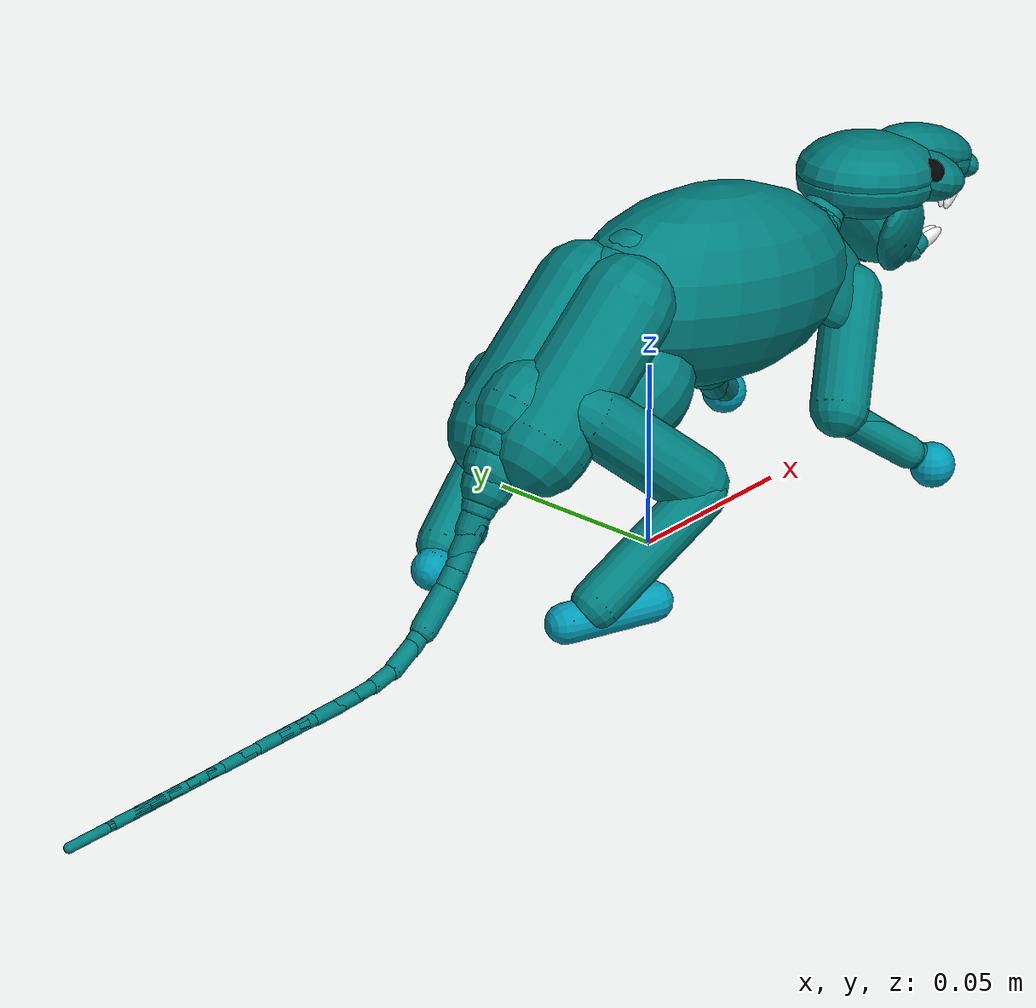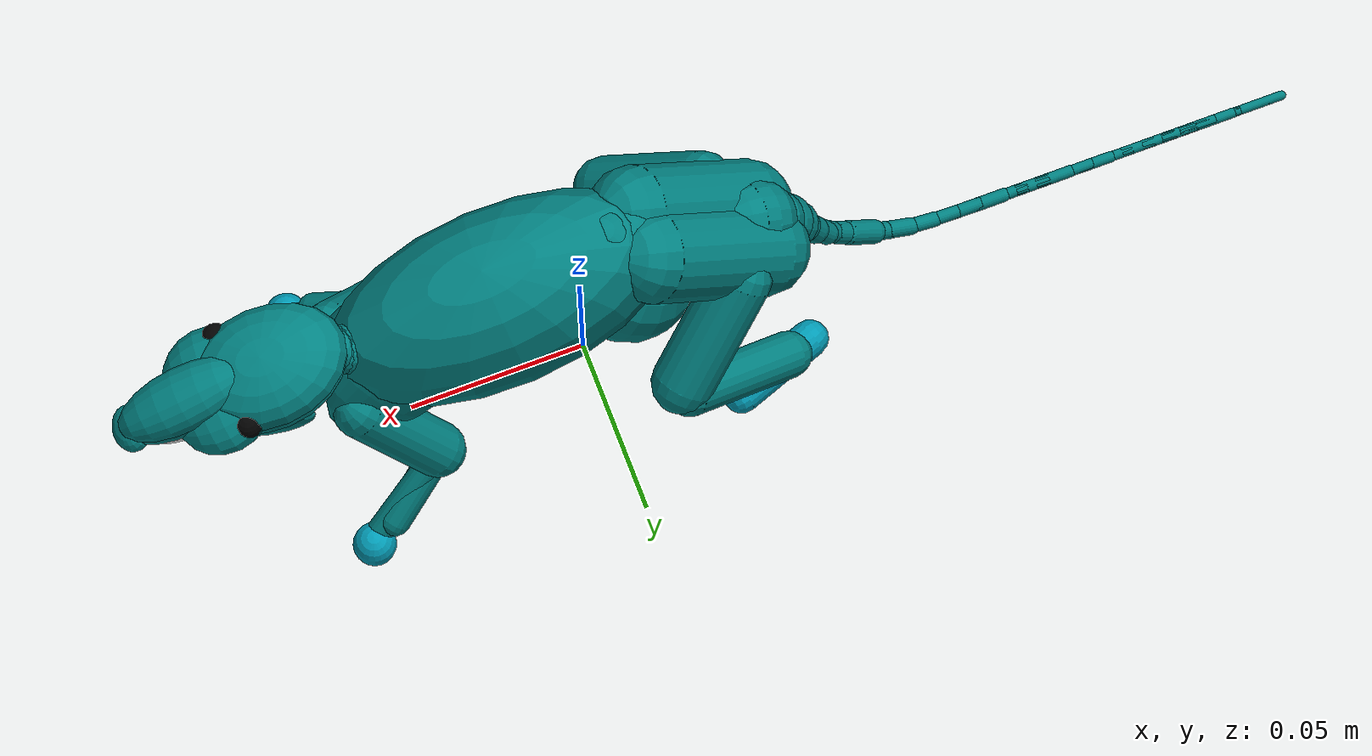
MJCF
<mujoco model="rat">
  <compiler angle="radian"/>

  <size njmax="8000" nconmax="4000"/>

  <visual>
    <quality shadowsize="2048"/>
    <global offheight="2200" offwidth="3208"/>
  </visual>

  <default>
    <joint limited="true" solreflimit="0.01 1" solimplimit="0.99 0.9999 0" armature="6e-07" damping="0.001"/>
    <geom friction="0.7 0.005 0.0001" solref="0.005 1"/>
    <site group="3" rgba="0 0 1 1"/>
    <tendon limited="false"/>
    <general ctrllimited="true" forcelimited="false" dyntype="filter" biastype="affine" dynprm="0.04"/>
    <default class="bone">
      <geom contype="0" conaffinity="0" group="0" rgba="0.5 0.5 0.5 1" density="1100"/>
    </default>
    <default class="collision">
      <geom contype="1" conaffinity="1" condim="1" group="2"/>
      <default class="collision_primitive">
        <geom type="capsule" group="2" rgba="0 0.5 0.5 1" density="500"/>
        <default class="collision_primitive_paw">
          <geom condim="3" priority="1" rgba="0 0.6 0.7 1" friction="1.5 0.005 0.0001"/>
        </default>
        <default class="nonself_collision_primitive">
          <geom conaffinity="0"/>
        </default>
      </default>
    </default>
    <default class="lumbar">
      <joint group="3" pos="0.003 0 -0.003" armature="1e-05" damping="0.03"/>
      <general forcerange="-20 20" gainprm="20" biasprm="0 -20"/>
      <default class="lumbar_extend">
        <joint stiffness="0.02" range="-0.5236 0.7854"/>
        <tendon range="-1 1"/>
        <general ctrlrange="-0.5236 0.7854"/>
      </default>
      <default class="lumbar_bend">
        <joint stiffness="0.03" range="-0.5236 0.5236"/>
        <tendon range="-1 1"/>
        <general ctrlrange="-0.5236 0.5236"/>
      </default>
      <default class="lumbar_twist">
        <joint stiffness="0.03" range="-0.5236 0.5236"/>
        <tendon range="-1 1"/>
        <general ctrlrange="-0.5236 0.5236"/>
      </default>
    </default>
    <default class="cervical">
      <joint group="3" pos="-0.02 0 -0.05" stiffness="1" armature="0.001" damping="1"/>
      <general forcerange="-20 20" gainprm="20" biasprm="0 -20"/>
      <default class="cervical_extend">
        <joint range="-0.40724 0.61087"/>
        <tendon range="-1 1"/>
        <general ctrlrange="-0.40724 0.61087"/>
      </default>
      <default class="cervical_bend">
        <joint range="-0.61087 0.61087"/>
        <tendon range="-1 1"/>
        <general ctrlrange="-0.61087 0.61087"/>
      </default>
      <default class="cervical_twist">
        <joint range="-0.61087 0.61087"/>
        <tendon range="-1 1"/>
        <general ctrlrange="-0.61087 0.61087"/>
      </default>
    </default>
    <default class="atlas">
      <joint axis="0 -1 0" stiffness="0.002" range="-0.087266 0.7854" damping="0.002"/>
      <general ctrlrange="-0.087266 0.7854" forcerange="-0.025 0.025" gainprm="0.05" biasprm="0 -0.05"/>
    </default>
    <default class="mandible">
      <joint stiffness="0.002" range="-0.29671 0.2618" springref="-0.31416" damping="0.002"/>
      <general ctrlrange="-0.29671 0.2618" forcerange="-0.025 0.025" gainprm="0.05" biasprm="0 -0.05"/>
    </default>
    <default class="caudal">
      <joint group="3" stiffness="1e-05" damping="0.002"/>
      <general forcerange="-0.1 0.1" gainprm="0.1" biasprm="0 -0.1"/>
      <default class="caudal_extend">
        <joint range="-0.087266 0.087266"/>
        <tendon range="-0.05 0.05"/>
        <general ctrlrange="-0.2618 0.2618"/>
      </default>
      <default class="caudal_bend">
        <joint range="-0.087266 0.087266"/>
        <tendon range="-0.2 0.2"/>
        <general ctrlrange="-0.2618 0.2618"/>
      </default>
    </default>
    <default class="hip">
      <joint armature="1e-05" damping="0.02"/>
      <general gainprm="0.2"/>
      <default class="hip_supinate">
        <joint range="-0.69813 0.5236"/>
        <general ctrlrange="-0.69813 0.5236" forcerange="-0.2 0.2" gainprm="0.4" biasprm="0 -0.4"/>
      </default>
      <default class="hip_abduct">
        <joint range="-0.5236 1.0472"/>
        <general ctrlrange="-0.5236 1.0472" forcerange="-0.2 0.2" gainprm="0.4" biasprm="0 -0.4"/>
      </default>
      <default class="hip_extend">
        <joint range="-1.5708 1.0472"/>
        <general ctrlrange="-1.5708 1.0472" forcerange="-0.3 0.3" gainprm="0.6" biasprm="0 -0.6"/>
      </default>
    </default>
    <default class="knee">
      <joint range="-1.2217 1.5359" damping="0.005"/>
      <general ctrlrange="-1.2217 1.5359" forcerange="-0.2 0.2" gainprm="0.4" biasprm="0 -0.4"/>
    </default>
    <default class="ankle">
      <joint range="-0.13963 1.3963" damping="0.003"/>
      <general ctrlrange="-0.13963 1.3963" forcerange="-0.2 0.2" gainprm="0.4" biasprm="0 -0.4"/>
    </default>
    <default class="toe">
      <joint range="-0.7854 1.5708" damping="0.001"/>
      <general ctrlrange="-0.7854 1.5708" forcerange="-0.025 0.025" gainprm="0.05" biasprm="0 -0.05"/>
    </default>
    <default class="scapula">
      <joint damping="0.005"/>
      <general forcerange="-0.25 0.25" gainprm="0.5" biasprm="0 -0.5"/>
      <default class="scapula_supinate">
        <joint pos="0 0.005 0" range="-0.017453 0.17453"/>
        <general ctrlrange="-0.017453 0.17453"/>
      </default>
      <default class="scapula_abduct">
        <joint pos="0 0.005 -0.01" range="-0.2618 0.2618"/>
        <general ctrlrange="-0.2618 0.2618"/>
      </default>
      <default class="scapula_extend">
        <joint pos="0 0 0" range="-0.034907 0.034907"/>
        <general ctrlrange="-0.034907 0.034907"/>
      </default>
    </default>
    <default class="shoulder">
      <joint range="-1.309 0.87266" damping="0.005"/>
      <general ctrlrange="-1.309 0.87266" forcerange="-0.15 0.15" gainprm="0.3" biasprm="0 -0.3"/>
    </default>
    <default class="shoulder_sup">
      <joint range="-0.05236 1.1345" damping="0.005"/>
      <general ctrlrange="-0.05236 1.1345" forcerange="-0.15 0.15" gainprm="0.3" biasprm="0 -0.3"/>
    </default>
    <default class="elbow">
      <joint range="-1.309 0.69813" damping="0.003"/>
      <general ctrlrange="-1.309 0.69813" forcerange="-0.15 0.15" gainprm="0.3" biasprm="0 -0.3"/>
    </default>
    <default class="wrist">
      <joint range="-0.34907 2.0944" damping="0.002"/>
      <general ctrlrange="-0.34907 2.0944" forcerange="-0.05 0.05" gainprm="0.1" biasprm="0 -0.1"/>
    </default>
    <default class="finger">
      <joint range="0 1.5708" damping="0.002"/>
      <general ctrlrange="0 1.5708" forcerange="-0.025 0.025" gainprm="0.05" biasprm="0 -0.05"/>
    </default>
    <default class="sensor">
      <site group="4"/>
    </default>
  </default>

  <statistic meansize="0.003"/>

  <worldbody>

    <camera name="Cam13" mode="fixed" focalpixel="2477.229548414393 2477.229548414393" resolution="3208 2200" sensorsize="0.014436 0.0099" pos="-0.7601674022374256 -1.437212204600267 0.8074461972683981" xyaxes="0.84311395 -0.53753789 0.01455625 0.20435236 0.34532512 0.91596434"/>

    <camera name="Cam14"  mode="fixed" pos="0 -2 0.412"  xyaxes="1 0 0.000 0 0.256 1"/>

    <body name="torso" pos="0.030995 2.0585e-07 0.06509">
      <site name="neck_3_kpsite" type="sphere" size=".005 .005 .005" rgba=".9 .6 .7 1" pos="0.025 0 0.02"/>

      <light name="tracking_light" mode="trackcom" pos="0 0 3"/>
      <camera name="back" mode="trackcom" pos="-1 0 0.5" xyaxes="0 -1 0 1 0 2"/>
      <camera name="side" mode="trackcom" pos="0 -1 0.5" xyaxes="1 0 0 0 1 2"/>
      <camera name="side_alt" mode="trackcom" pos="0.5 -0.561 0.199" xyaxes="0.766 0.643 0 -0.162 0.192 0.968"/>
      <camera name="side_alt2" mode="trackcom" pos="-0.386 -2.103 1.099" xyaxes="0.986 -0.164 -0.000 0.072 0.435 0.898"/>

       <camera name="faroff" mode="trackcom"  pos="-0.129 -4.905 1.394" xyaxes="1.000 -0.019 0.000 0.005 0.264 0.965"/>
       <camera/>

      <geom name="collision_torso" class="nonself_collision_primitive" type="ellipsoid" size="0.05 0.024 0.026" density="468.25" pos="-0.0082 0 0" euler="0 0.17453 0"/>
      <body name="vertebra_1" pos="-0.019179 -1.8803e-07 0.016846">
        <geom name="vertebra_1_collision" class="nonself_collision_primitive" type="sphere" size="0.01" pos="0 0 -0.00164"/>
        <body name="vertebra_2" pos="-0.0056297 2.5948e-06 0.00053209">
          <geom name="vertebra_2_collision" class="nonself_collision_primitive" type="sphere" size="0.01" pos="0 0 -0.00164"/>
          <body name="vertebra_3" pos="-0.0065172 -1.0411e-05 -9.4672e-05">
            <geom name="vertebra_3_collision" class="nonself_collision_primitive" type="sphere" size="0.01" pos="0 0 -0.00164"/>
            <body name="vertebra_4" pos="-0.0067777 8.7461e-06 -0.0012993">
              <geom name="vertebra_4_collision" class="nonself_collision_primitive" type="sphere" size="0.01" pos="0 0 -0.00164"/>
              <body name="vertebra_5" pos="-0.0068901 -6.2043e-06 -0.0024981">

                <site name="spineL_4_kpsite" type="sphere" size=".005 .005 .005" rgba=".9 .6 .7 1" pos="0 0 0.007"/>

                <geom name="vertebra_5_collision" class="nonself_collision_primitive" type="sphere" size="0.01" pos="0 0 -0.00164"/>
                <body name="vertebra_6" pos="-0.0061853 5.2544e-06 -0.0036411">
                  <geom name="vertebra_6_collision" class="nonself_collision_primitive" type="sphere" size="0.01" pos="0 0 -0.00164"/>
                  <joint name="vertebra_6_twist" class="lumbar_twist" axis="1 0 0"/>
                  <body name="pelvis" pos="-0.013071 3.5132e-06 -0.008121">
                    <geom name="collision_pelvis_L" class="nonself_collision_primitive" size="0.013 0.021 0" density="1548.6" pos="-0.00082 0.00656 -0.00574" euler="0 0.87266 0"/>
                    <geom name="collision_pelvis_R" class="nonself_collision_primitive" size="0.013 0.021 0" density="1548.6" pos="-0.00082 -0.00656 -0.00574" euler="0 0.87266 0"/>
                    <geom name="collision_pelvis_gut" class="nonself_collision_primitive" type="ellipsoid" size="0.02 0.02 0.018" density="1548.6" pos="0.0205 0 -0.0164" euler="0 -0.5236 0"/>
                    <site name="hip_L" size="0.0022" pos="-0.0048103 0.011491 -0.0098878"/>
                    <site name="hip_R" size="0.0022" pos="-0.0048103 -0.011491 -0.0098878"/>

                    <body name="upper_leg_L" pos="-0.0048103 0.011491 -0.0098878">
                      <joint name="hip_L_supinate" class="hip_supinate" axis="0 0 1"/>
                      <joint name="hip_L_abduct" class="hip_abduct" axis="1 0 0"/>
                      <joint name="hip_L_extend" class="hip_extend" axis="0 1 0"/>
                      <site name="knee_L" type="cylinder" size="0.0006 0.004" pos="0.015423 0.017479 -0.025704" zaxis="0 1 0"/>
                      <geom name="upper_leg_L0_collision" class="collision_primitive" size="0.0087424 0.017485" density="1561.8" pos="0.0086025 0.010753 -0.012904" euler="0.61087 -0.69813 0"/>

                    <body name="lower_leg_L" pos="0.01542264534586861 0.01747899805865108 -0.02570440890978101">

                        <site name="knee_L_14_kpsite" type="sphere" size=".01 .01 .01" rgba=".9 .6 .7 1" pos="0 0 0"/>

                        <joint name="knee_L" class="knee" axis="0.5 -1 0"/>
                        <site name="ankle_L" type="cylinder" size="0.0006000000000000001 0.0026" pos="-0.03230154033783406 -0.004727054683585472 -0.02205958852339887" zaxis="0 1 0"/>
                        <body name="foot_L" pos="-0.03230154033783406 -0.004727054683585472 -0.02205958852339887">

                          <site name="ankle_L_15_kpsite" type="sphere" size=".008 .008 .008" rgba=".9 .6 .7 1" pos="0 0 0"/>

                          <joint name="ankle_L" class="ankle" axis="-0.3 1 0"/>
                          <geom name="foot_L_collision" class="collision_primitive_paw" size="0.005210712207833968 0.01238417565878816" density="2041.15978228" pos="0.008274464032760684 0.002256672008934731 -0.002256672008934731" euler="1.570796326794897 -1.221730476396031 0"/>
                          <site name="toe_L" type="cylinder" size="0.0006000000000000001 0.005000000000000001" pos="0.02109994311367263 0.007614327297542731 -0.002752166493087734" zaxis="0 1 0"/>
                          <body name="toe_L" pos="0.02109994311367263 0.007614327297542731 -0.002752166493087734">

                            <site name="foot_L_16_kpsite" type="sphere" size=".005 .005 .005" rgba=".9 .6 .7 1" pos="0 0 0"/>

                            <site name="sole_L" class="sensor" type="box" size="0.006 0.004 0.002" pos="0.008200000000000001 0.00246 -0.00164" euler="0 0 0.3490658503988659"/>
                          </body>
                        </body>
                        <geom name="lower_leg_L_collision" class="collision_primitive" size="0.006556802251673236 0.01923328660490816" density="1302.86687267" pos="-0.01226339046929431 0.0001224792426221771 -0.01071813365303941" quat="0.5843939876140521 0.278581552273902 0.3900453953818352 0.6547828460754284"/>
                      </body>
                    </body>

                    <body name="upper_leg_R" pos="-0.0048103 -0.011491 -0.0098878">
                      <joint name="hip_R_supinate" class="hip_supinate" axis="0 0 -1"/>
                      <joint name="hip_R_abduct" class="hip_abduct" axis="-1 0 0"/>
                      <joint name="hip_R_extend" class="hip_extend" axis="0 1 0"/>
                      <site name="knee_R" type="cylinder" size="0.0006 0.004" pos="0.015423 -0.017479 -0.025704" zaxis="0 1 0"/>
                      <geom name="upper_leg_R0_collision" class="collision_primitive" size="0.0087424 0.017485" density="1561.8" pos="0.0086025 -0.010753 -0.012904" euler="-0.61087 -0.69813 0"/>

                      <body name="lower_leg_R" pos="0.01542264534586861 -0.01747899805865108 -0.02570440890978101">

                        <site name="knee_R_17_kpsite" type="sphere" size=".01 .01 .01" rgba=".9 .6 .7 1" pos="0 0 0"/>

                        <joint name="knee_R" class="knee" axis="-0.5 -1 0"/>
                        <site name="ankle_R" type="cylinder" size="0.0006000000000000001 0.0026" pos="-0.03230154033783406 0.004727054683585472 -0.02205958852339887" zaxis="0 1 0"/>
                        <body name="foot_R" pos="-0.03230154033783406 0.004727054683585472 -0.02205958852339887">

                          <site name="ankle_R_18_kpsite" type="sphere" size=".008 .008 .008" rgba=".9 .6 .7 1" pos="0 0 0"/>

                          <joint name="ankle_R" class="ankle" axis="0.3 1 0"/>
                          <geom name="foot_R_collision" class="collision_primitive_paw" size="0.005210712207833968 0.01238417565878816" density="2041.15978228" pos="0.008274464032760684 -0.002256672008934731 -0.002256672008934731" euler="1.570796326794897 1.221730476396031 0"/>
                          <site name="toe_R" type="cylinder" size="0.0006000000000000001 0.005000000000000001" pos="0.02109994311367263 -0.007614327297542731 -0.002752166493087734" zaxis="0 1 0"/>
                          <body name="toe_R" pos="0.02109994311367263 -0.007614327297542731 -0.002752166493087734">

                            <site name="foot_R_19_kpsite" type="sphere" size=".005 .005 .005" rgba=".9 .6 .7 1" pos="0 0 0"/>

                            <site name="sole_R" class="sensor" type="box" size="0.006 0.004 0.002" pos="0.008200000000000001 -0.00246 -0.00164" euler="0 0 -0.3490658503988659"/>
                          </body>
                        </body>
                        <geom name="lower_leg_R_collision" class="collision_primitive" size="0.006556802251673236 0.01923328660490816" density="1302.86687267" pos="-0.01202896613332032 -0.0001615786954038913 -0.0105741369075766" quat="0.6564315036111004 0.3901417719765998 0.2779576926818845 0.5827749135856758"/>
                      </body>
                    </body>

                    <body name="vertebra_C1" pos="-0.01579 0 -0.011882">
                      <body name="vertebra_C2" pos="-0.0038771 0 -0.0042264">
                        <body name="vertebra_C3" pos="-0.003424 0 -0.0042631">
                          <body name="vertebra_C4" pos="-0.0032719 0 -0.0044168">

                          <site name="tailbase_5_kpsite" type="sphere" size=".005 .005 .005" rgba=".9 .6 .7 1" pos="0 0 0.011"/>

                            <body name="vertebra_C5" pos="-0.003176 0 -0.0045693">
                              <body name="vertebra_C6" pos="-0.0031192 0 -0.0049014">
                                <body name="vertebra_C7" pos="-0.0032158 0 -0.0056444">
                                  <body name="vertebra_C8" pos="-0.0034459 0 -0.0055182">
                                    <body name="vertebra_C9" pos="-0.0042852 0 -0.005115">
                                      <body name="vertebra_C10" pos="-0.0048615 0 -0.0045622">
                                        <body name="vertebra_C11" pos="-0.0053748 0 -0.0043642">
                                          <body name="vertebra_C12" pos="-0.0061345 0 -0.0038415">
                                            <body name="vertebra_C13" pos="-0.0068974 0 -0.0025924">
                                              <body name="vertebra_C14" pos="-0.006825 0 -0.0009089">
                                                <body name="vertebra_C15" pos="-0.0065262 0 -0.00031533">
                                                  <body name="vertebra_C16" pos="-0.0066939 0 -0.00013849">
                                                    <body name="vertebra_C17" pos="-0.0064854 0 -1.6705e-05">
                                                      <body name="vertebra_C18" pos="-0.0062074 0 0">
                                                        <body name="vertebra_C19" pos="-0.0062043 0 0">
                                                          <body name="vertebra_C20" pos="-0.0062284 0 2.5165e-06">
                                                            <body name="vertebra_C21" pos="-0.0061177 0 -0.00010966">
                                                            <body name="vertebra_C22" pos="-0.0065081 0 -1.312e-05">
                                                            <body name="vertebra_C23" pos="-0.0063908 0 0">
                                                            <body name="vertebra_C24" pos="-0.0061807 0 0">
                                                            <body name="vertebra_C25" pos="-0.0059682 0 0">
                                                            <body name="vertebra_C26" pos="-0.0056287 0 0">
                                                            <body name="vertebra_C27" pos="-0.0051931 0 0">
                                                            <body name="vertebra_C28" pos="-0.0050362 0 5.074e-07">
                                                            <body name="vertebra_C29" pos="-0.0047739 0 0">
                                                            <body name="vertebra_C30" pos="-0.0040054 0 -4.1972e-07">
                                                            <geom name="vertebra_C30_collision" class="collision_primitive" size="0.0012979 0.0061625 0.0034565" density="507.16" pos="0 0 0" quat="0 0.70711 0 0.70711"/>
                                                            </body>
                                                            <joint name="vertebra_C29_bend" class="caudal_bend" pos="0.0037408 0 0" axis="0 0 -1" range="-0.2618 0.2618"/>
                                                            <geom name="vertebra_C29_collision" class="collision_primitive" size="0.0012968 0.0059638 0.0026188" density="507.16" pos="0 0 0" quat="0 0.70711 0 0.70711"/>
                                                            </body>
                                                            <geom name="vertebra_C28_collision" class="collision_primitive" size="0.0012968 0.0057649 0.0028778" density="507.16" pos="0 0 0" quat="0 0.70711 0 0.70711"/>
                                                            </body>
                                                            <joint name="vertebra_C27_extend" class="caudal_extend" pos="0.0038538 0 0" axis="0 1 0" range="-0.2618 0.2618"/>
                                                            <geom name="vertebra_C27_collision" class="collision_primitive" size="0.0013796 0.0055662 0.0030614" density="507.16" pos="0 0 0" quat="0 0.70711 0 0.70711"/>
                                                            </body>
                                                            <geom name="vertebra_C26_collision" class="collision_primitive" size="0.0013796 0.0053673 0.0030614" density="507.16" pos="0 0 0" quat="0 0.70711 0 0.70711"/>
                                                            </body>
                                                            <joint name="vertebra_C25_bend" class="caudal_bend" pos="0.0035962 0 0" axis="0 0 -1" range="-0.2618 0.2618"/>
                                                            <geom name="vertebra_C25_collision" class="collision_primitive" size="0.0013796 0.0051686 0.0034789" density="507.16" pos="0 0 0" quat="0 0.70711 0 0.70711"/>
                                                            </body>
                                                            <geom name="vertebra_C24_collision" class="collision_primitive" size="0.0013796 0.0049698 0.0034789" density="507.16" pos="0 0 0" quat="0 0.70711 0 0.70711"/>
                                                            </body>
                                                            <joint name="vertebra_C23_extend" class="caudal_extend" pos="0.0035962 0 0" axis="0 1 0" range="-0.2618 0.2618"/>
                                                            <geom name="vertebra_C23_collision" class="collision_primitive" size="0.0013796 0.004771 0.0037408" density="507.16" pos="0 0 0" quat="0 0.70711 0 0.70711"/>
                                                            </body>
                                                            <geom name="vertebra_C22_collision" class="collision_primitive" size="0.0013796 0.0045722 0.0037408" density="507.16" pos="0 0 0" quat="0 0.70711 0 0.70711"/>
                                                            </body>
                                                            <joint name="vertebra_C21_bend" class="caudal_bend" pos="0.0038632 0 6.925e-05" axis="0.017923 0 -0.99984" range="-0.2618 0.2618"/>
                                                            <geom name="vertebra_C21_collision" class="collision_primitive" size="0.0015305 0.0049721 0.0038538" density="507.16" pos="0 0 0" quat="0 0.70711 0 0.70711"/>
                                                            </body>
                                                            <geom name="vertebra_C20_collision" class="collision_primitive" size="0.0014983 0.0051765 0.0035962" density="507.16" pos="0 0 0" quat="0 0.70711 0 0.70711"/>
                                                          </body>
                                                          <joint name="vertebra_C19_extend" class="caudal_extend" pos="0.0042786 0 0" axis="0 1 0" range="-0.2618 0.2618"/>
                                                          <geom name="vertebra_C19_collision" class="collision_primitive" size="0.001634 0.0051714 0.0035962" density="507.16" pos="0 0 0" quat="0 0.70711 0 0.70711"/>
                                                        </body>
                                                        <geom name="vertebra_C18_collision" class="collision_primitive" size="0.001634 0.0049128 0.0035962" density="507.16" pos="0 0 0" quat="0 0.70711 0 0.70711"/>
                                                      </body>
                                                      <joint name="vertebra_C17_bend" class="caudal_bend" pos="0.0042794 0 1.1023e-05" axis="0.0025757 0 -1" range="-0.2618 0.2618"/>
                                                      <geom name="vertebra_C17_collision" class="collision_primitive" size="0.001634 0.0046542 0.0035962" density="507.16" pos="0 0 0" quat="0 0.70711 0 0.70711"/>
                                                    </body>
                                                    <geom name="vertebra_C16_collision" class="collision_primitive" size="0.0018781 0.0043956 0.0038669" density="507.16" pos="0 0 0" quat="0 0.70711 0 0.70711"/>
                                                  </body>
                                                  <joint name="vertebra_C15_extend" class="caudal_extend" pos="0.0039328 0 0.00019003" axis="0 1 0" range="-0.2618 0.2618"/>
                                                  <geom name="vertebra_C15_collision" class="collision_primitive" size="0.0018453 0.0041371 0.0038638" density="507.16" pos="0 0 0" quat="0 0.69918 0 0.71494"/>
                                                </body>
                                                <geom name="vertebra_C14_collision" class="collision_primitive" size="0.0018451 0.0038785 0.0038637" density="507.16" pos="0 0 0" quat="0 0.68661 0 0.72702"/>
                                              </body>
                                              <joint name="vertebra_C13_bend" class="caudal_bend" pos="0.0035122 0 0.0013201" axis="0.35182 0 -0.93607" range="-0.2618 0.2618"/>
                                              <geom name="vertebra_C13_collision" class="collision_primitive" size="0.0020907 0.00396 0.0042786" density="507.16" pos="0 0 0" quat="0 0.62939 0 0.77709"/>
                                            </body>
                                            <geom name="vertebra_C12_collision" class="collision_primitive" size="0.0024335 0.0041462 0.0042791" density="507.16" pos="0 0 0" quat="0 0.50808 0 0.86131"/>
                                          </body>
                                          <joint name="vertebra_C11_extend" class="caudal_extend" pos="0.002737 0 0.0022224" axis="0 1 0" range="-0.2618 0.2618"/>
                                          <geom name="vertebra_C11_collision" class="collision_primitive" size="0.0024997 0.0038969 0.0042794" density="507.16" pos="0 0 0" quat="0 0.43494 0 0.90046"/>
                                        </body>
                                        <geom name="vertebra_C10_collision" class="collision_primitive" size="0.0034212 0.0051968 0.0039379" density="507.16" pos="0 0 0" quat="0 0.40482 0 0.9144"/>
                                      </body>
                                      <joint name="vertebra_C9_bend" class="caudal_bend" pos="0.0028865 0 0.0034454" axis="0.76655 0 -0.64219" range="-0.2618 0.2618"/>
                                      <geom name="vertebra_C9_collision" class="collision_primitive" size="0.0031306 0.0044949 0.0039374" density="507.16" pos="0 0 0" quat="0.93394 0 0.35744 0"/>
                                    </body>
                                    <geom name="vertebra_C8_collision" class="collision_primitive" size="0.0030158 0.003957 0.0039369" density="507.16" pos="0 0 0" quat="0.95576 0 0.29416 0"/>
                                  </body>
                                  <joint name="vertebra_C7_extend" class="caudal_extend" pos="0.0026902 0 0.0047218" axis="0 1 0" range="-0.2618 0.2618"/>
                                  <geom name="vertebra_C7_collision" class="collision_primitive" size="0.0032569 0.0046389 0.0037521" density="507.16" pos="0 0 0" quat="-0.95872 -0.028644 -0.26293 0.10445"/>
                                </body>
                                <joint name="vertebra_C6_extend" class="caudal_extend" pos="0.0021034 0 0.0033051" axis="0 1 0" range="-0.2618 0.2618"/>
                                <joint name="vertebra_C6_bend" class="caudal_bend" pos="0.0021034 0 0.0033051" axis="0.84365 0 -0.53689" range="-0.2618 0.2618"/>
                                <geom name="vertebra_C6_collision" class="collision_primitive" size="0.0038491 0.0044418 0.0039176" density="507.16" pos="0 0 0" quat="-0.96847 -0.020165 -0.23384 0.083519"/>
                              </body>
                              <joint name="vertebra_C5_extend" class="caudal_extend" pos="0.0020122 0 0.0028951" axis="0 1 0" range="-0.2618 0.2618"/>
                              <joint name="vertebra_C5_bend" class="caudal_bend" pos="0.0020122 0 0.0028951" axis="0.82113 0 -0.57074" range="-0.2618 0.2618"/>
                              <geom name="vertebra_C5_collision" class="collision_primitive" size="0.0045453 0.0037766 0.0035257" density="507.16" pos="0 0 0" quat="0.95956 0 0.28152 0"/>
                            </body>
                            <joint name="vertebra_C4_extend" class="caudal_extend" pos="0.0025361 0 0.0034235" axis="0 1 0" range="-0.2618 0.2618"/>
                            <joint name="vertebra_C4_bend" class="caudal_bend" pos="0.0025361 0 0.0034235" axis="0.80354 0 -0.59524" range="-0.2618 0.2618"/>
                            <geom name="vertebra_C4_collision" class="collision_primitive" size="0.0066528 0.0038517 0.0042605" density="507.16" pos="0 0 0" quat="0.6699 0.22636 0.22636 0.6699"/>
                          </body>
                          <joint name="vertebra_C3_extend" class="caudal_extend" pos="0.0028146 0 0.0035044" axis="0 1 0" range="-0.2618 0.2618"/>
                          <joint name="vertebra_C3_bend" class="caudal_bend" pos="0.0028146 0 0.0035044" axis="0.77966 0 -0.62621" range="-0.2618 0.2618"/>
                          <geom name="vertebra_C3_collision" class="collision_primitive" size="0.007896 0.0040974 0.0044947" density="507.16" pos="0 0 0" quat="0.65841 0.25786 0.25786 0.65841"/>
                        </body>
                        <joint name="vertebra_C2_extend" class="caudal_extend" pos="0.0035585 0 0.0038792" axis="0 1 0" range="-0.2618 0.2618"/>
                        <joint name="vertebra_C2_bend" class="caudal_bend" pos="0.0035585 0 0.0038792" axis="0.73691 0 -0.67599" range="-0.2618 0.2618"/>
                        <geom name="vertebra_C2_collision" class="collision_primitive" size="0.0083604 0.0035062 0.0052642" density="507.16" pos="0 0 0" quat="0.61659 0.34614 0.34614 0.61659"/>
                      </body>
                      <joint name="vertebra_C1_extend" class="caudal_extend" pos="0.0043423 0 0.0032675" axis="0 1 0" range="-0.2618 0.2618"/>
                      <joint name="vertebra_C1_bend" class="caudal_bend" pos="0.0043423 0 0.0032675" axis="0.60127 0 -0.79905" range="-0.2618 0.2618"/>
                      <geom name="vertebra_C1_collision" class="collision_primitive" size="0.010965 0.0023704 0.0054344" density="507.16" pos="0 0 0" quat="0.57724 0.35066 0.32403 0.66245"/>
                    </body>
                  </body>
                </body>
                <joint name="vertebra_5_bend" class="lumbar_bend" axis="0 0 1"/>
              </body>
              <joint name="vertebra_4_extend" class="lumbar_extend" axis="0 1 0"/>
            </body>
            <joint name="vertebra_3_twist" class="lumbar_twist" axis="1 0 0"/>
          </body>
          <joint name="vertebra_2_bend" class="lumbar_bend" axis="0 0 1"/>
        </body>
        <joint name="vertebra_1_extend" class="lumbar_extend" axis="0 1 0"/>
      </body>
      <body name="vertebra_cervical_5" pos="0.027709 1.1826e-05 -0.0010003">
        <geom name="vertebra_cervical_5_collision" class="nonself_collision_primitive" type="sphere" size="0.009" density="300"/>
        <body name="vertebra_cervical_4" pos="0.002409 -1.2015e-05 0.00080958">
          <geom name="vertebra_cervical_4_collision" class="nonself_collision_primitive" type="sphere" size="0.0084" density="300"/>
          <body name="vertebra_cervical_3" pos="0.0021503 0 0.00094153">
            <geom name="vertebra_cervical_3_collision" class="nonself_collision_primitive" type="sphere" size="0.0078" density="300"/>
            <body name="vertebra_cervical_2" pos="0.0019 0 0.00087476">
              <geom name="vertebra_cervical_2_collision" class="nonself_collision_primitive" type="sphere" size="0.0072" density="300"/>
              <body name="vertebra_cervical_1" pos="0.0017775 0 0.00093507">
                <geom name="vertebra_cervical_1_collision" class="nonself_collision_primitive" type="sphere" size="0.0066" density="300"/>
                <body name="vertebra_axis" pos="0.0018823 -1.7567e-06 0.0017059">
                  <geom name="vertebra_axis_collision" class="nonself_collision_primitive" type="sphere" size="0.006" density="300"/>
                  <body name="vertebra_atlant" pos="0.0024522 1.757e-06 0.0013696">
                    <geom name="vertebra_atlant_collision" class="nonself_collision_primitive" type="sphere" size="0.0054" density="300"/>
                    <joint name="vertebra_atlant_extend" class="cervical_extend" pos="2.7406e-05 0 -0.00021153" axis="0 1 0"/>
                    <body name="skull" pos="0.025955 0 0.0017705">
                      <geom name="skull_0_collision" class="collision_primitive" type="ellipsoid" size="0.022095 0.016696 0.01" density="703.11" pos="-0.009059 0 0.00082" euler="0 0.17453 0"/>
                      <geom name="skull_0b_collision" class="collision_primitive" type="ellipsoid" size="0.022095 0.016696 0.01" density="1.4062" pos="-0.009059 0 0.00328" euler="0 0.17453 0"/>
                      <geom name="skull_F_collision" class="collision_primitive" type="ellipsoid" size="0.0071809 0.0089043 0.02" density="703.11" pos="0.014494 0 -0.00082" euler="0 1.9199 0"/>
                      <geom name="skull_Fb_collision" class="collision_primitive" type="ellipsoid" size="0.0071809 0.0089043 0.02" density="1.4062" pos="0.014494 0 0.00164" euler="0 1.9199 0"/>
                      <geom name="skull_L_collision" class="collision_primitive" type="ellipsoid" size="0.0071809 0.013357 0.014" density="703.11" pos="0.0054354 0.0045635 -0.00082" euler="0 1.9199 0"/>
                      <geom name="eye_L_collision" class="collision_primitive" type="sphere" group="1" size="0.004 0.004 0.004" rgba="0 0 0 1" pos="0.0011048 0.0128 0.0025"/>

                      <site name="nose_0_kpsite" type="sphere" size=".005 .005 .005" rgba="1 0 0 1" pos=".038 0 -.004"/>
                      <site name="ear_L_1_kpsite" type="sphere" size=".005 .005 .005" rgba=".9 .6 .7 1" pos="-.011 0.0128 0.013"/>
                      <site name="ear_R_2_kpsite" type="sphere" size=".005 .005 .005" rgba=".9 .6 .7 1" pos="-.011 -0.0128 0.013"/>

                      <geom name="skull_R_collision" class="collision_primitive" type="ellipsoid" size="0.0071809 0.013357 0.014" density="703.11" pos="0.0054354 -0.0045635 -0.00082" euler="0 1.9199 0"/>
                      <geom name="eye_R_collision" class="collision_primitive" type="sphere" group="1" size="0.004 0.004 0.004" rgba="0 0 0 1" pos="0.0011048 -0.0128 0.0025"/>
                      <geom name="skull_P0_collision" class="collision_primitive" type="box" size="0.0066286 0.006233 0.0016" density="703.11" pos="0.0018118 0 -0.00574"/>
                      <geom name="skull_P1_collision" class="collision_primitive" type="box" size="0.004419 0.004007 0.0012" density="703.11" pos="0.0063413 0 -0.00574"/>
                      <geom name="skull_P2_collision" class="collision_primitive" type="box" size="0.0011048 0.0033391 0.0008" density="703.11" pos="0.0086061 0 -0.00574"/>
                      <geom name="skull_T0_collision" class="collision_primitive" type="ellipsoid" size="0.0055238 0.0066783 0.004" density="703.11" pos="0.029895 0 -0.00656" euler="0 0.5236 0"/>
                      <geom name="skull_T1_collision" class="collision_primitive" type="ellipsoid" group="1" size="0.0022095 0.0016696 0.007" rgba="1 1 1 1" density="703.11" pos="0.028083 0.0009127 -0.0123" euler="0 0.5236 0"/>
                      <geom name="skull_T2_collision" class="collision_primitive" type="ellipsoid" group="1" size="0.0022095 0.0016696 0.007" rgba="1 1 1 1" density="703.11" pos="0.028083 -0.0009127 -0.0123" euler="0 0.5236 0"/>
                      <joint name="atlas" class="atlas" pos="-0.028436 0 0"/>
                      <site name="head" class="sensor" type="box" size="0.002 0.002 0.002"/>
                      <camera name="egocentric" fovy="80" pos="0.01 0 0.005" euler="0 -1.5708 -1.5708"/>
                      <body name="jaw" pos="0.00045295 0 -0.0164" euler="0 0.2618 0">
                        <geom name="jaw_back_collision" class="collision_primitive" type="ellipsoid" size="0.012152 0.013357 0.007" density="314.06" pos="-0.010871 0 0.00205" euler="0 0.95993 0"/>
                        <geom name="jaw_F_collision" class="collision_primitive" type="ellipsoid" size="0.0033143 0.0066783 0.012" density="314.06" pos="0.0027177 0 -0.00492" euler="0 1.8326 0"/>
                        <geom name="jaw_L_collision" class="collision_primitive" type="ellipsoid" size="0.0099429 0.0038957 0.016" density="314.06" pos="-0.0054354 0.0082143 0.00082" euler="-0.69813 2.1817 0.5236"/>
                        <geom name="jaw_R_collision" class="collision_primitive" type="ellipsoid" size="0.0099429 0.0038957 0.016" density="314.06" pos="-0.0054354 -0.0082143 0.00082" euler="0.69813 2.1817 -0.5236"/>
                        <geom name="jaw_T0_collision" class="collision_primitive" type="ellipsoid" size="0.0033143 0.0033391 0.006" density="314.06" pos="0.012683 0 -0.00574" euler="0 1.2217 0"/>
                        <geom name="jaw_T1_collision" class="collision_primitive" type="ellipsoid" group="1" size="0.0022095 0.0013357 0.007" rgba="1 1 1 1" density="314.06" pos="0.017212 0.0009127 -0.0041" euler="0 1.1345 0"/>
                        <geom name="jaw_T2_collision" class="collision_primitive" type="ellipsoid" group="1" size="0.0022095 0.0013357 0.007" rgba="1 1 1 1" density="314.06" pos="0.017212 -0.0009127 -0.0041" euler="0 1.1345 0"/>
                        <geom name="jaw_P0_collision" class="collision_primitive" type="box" size="0.0066286 0.006233 0.0016" density="314.06" pos="-0.0027177 0 0.00082" euler="0 0.95993 0"/>
                        <geom name="jaw_P1_collision" class="collision_primitive" type="box" size="0.004419 0.0048974 0.001" density="314.06" pos="0 0 -0.000984" euler="0 0.5236 0"/>
                        <geom name="jaw_P2_collision" class="collision_primitive" type="box" size="0.004419 0.004007 0.001" density="314.06" pos="0.0027177 0 -0.002296" euler="0 0.43633 0"/>
                        <geom name="jaw_P3_collision" class="collision_primitive" type="box" size="0.0033143 0.0028939 0.0006" density="314.06" pos="0.0047107 0 -0.00287" euler="0 0.2618 0"/>
                        <joint name="mandible" class="mandible" pos="-0.0185 0 0.004" axis="0 1 0"/>
                      </body>
                    </body>
                  </body>
                  <joint name="vertebra_axis_twist" class="cervical_twist" pos="9.9439e-05 0 -0.00026762" axis="0.74098 -0.00069152 0.67152"/>
                </body>
                <joint name="vertebra_cervical_1_bend" class="cervical_bend" pos="2.747e-05 0 -0.00026377" axis="-0.46557 0 0.88501"/>
              </body>
              <joint name="vertebra_cervical_2_extend" class="cervical_extend" pos="1.2952e-05 0 -0.00025387" axis="0 1 0"/>
            </body>
            <joint name="vertebra_cervical_3_twist" class="cervical_twist" pos="8.1976e-06 0 -0.00025443" axis="0.91604 0 0.4011"/>
          </body>
          <joint name="vertebra_cervical_4_bend" class="cervical_bend" pos="-1.5376e-05 4.7973e-07 -0.00027279" axis="-0.31855 0 0.9479"/>
        </body>
        <joint name="vertebra_cervical_5_extend" class="cervical_extend" pos="-0.00019346 -3.9986e-07 -0.00022969" axis="0 1 0"/>
      </body>

      <body name="scapula_L" pos="0.00656 0.00164 0.01148">

        <site name="shoulder_L_6_kpsite" type="sphere" size=".005 .005 .005" rgba=".9 .6 .7 1" pos="0.026 0.02 -.004"/>

        <joint name="scapula_L_supinate" class="scapula_supinate" pos="0 -0.005000000000000001 0" axis="-0 -0 1"/>
        <joint name="scapula_L_abduct" class="scapula_abduct" pos="0 -0.005000000000000001 -0.01" axis="1 -0 -0"/>
        <joint name="scapula_L_extend" class="scapula_extend" pos="0 0 0" axis="0.3 1 0"/>
        <site name="shoulder_L" size="0.002" pos="0.0287 0.00984 -0.02542"/>
        <body name="upper_arm_L" pos="0.0287 0.00984 -0.02542">
          <joint name="shoulder_L" class="shoulder" axis="0 1 0"/>
          <joint name="shoulder_sup_L" class="shoulder_sup" axis="0 0 -1"/>
          <site name="elbow_L" type="cylinder" size="0.0006000000000000001 0.004" pos="-0.01593120836133218 0.01035528543486592 -0.02230369170586505" zaxis="0 1 0.2"/>
          <body name="lower_arm_L" pos="-0.01593120836133218 0.01035528543486592 -0.02230369170586505">

            <site name="elbow_L_7_kpsite" type="sphere" size=".008 .008 .008" rgba=".9 .6 .7 1" pos="0 0 0"/>

            <joint name="elbow_L" class="elbow" axis="0 1 0.2"/>
            <site name="wrist_L" type="cylinder" size="0.0008 0.0034" pos="0.02160265376479308 0.01260154802946263 -0.01980243261772699" zaxis="0 1 0"/>
            <body name="hand_L" pos="0.02160265376479308 0.01260154802946263 -0.01980243261772699">
              <site name="wrist_L_8_kpsite" type="sphere" size=".005 .005 .005" rgba=".9 .6 .7 1" pos="0 0 0"/>

              <geom name="hand_L_collision" class="collision_primitive_paw" type="ellipsoid" size="0.006 0.006 0.006" density="2531.78122831" pos="0.001515873457919734 0.0007579367289598669 -0.002547620373759201" euler="0 0 0"/>

              <body name="finger_L" pos="0.003031746915839468 0.001515873457919734 -0.008337304018558537">
                <site name="hand_L_9_kpsite" type="sphere" size=".005 .005 .005" rgba=".9 .6 .7 1" pos="0 0 0"/>
                <site name="palm_L" class="sensor" type="box" size="0.004 0.004 0.002" pos="0.00492 0.00246 -0.00164" euler="0 0 0.4886921905584123"/>
              </body>
            </body>
            <geom name="radius_L_collision" class="collision_primitive" size="0.003732165792697991 0.01591658941003555" pos="0.01150545467526729 0.006850732667129763 -0.01222632491350886" quat="0.02376493230846292 0.7917721441518218 0.4232293467931716 0.4397829234413568"/>
            <geom name="ulna_L_collision" class="collision_primitive" size="0.004390783285527048 0.01317234985658114" pos="0.006749764363547758 0.004992418652633264 -0.009489848452311813" quat="0.01282244452041863 0.7446249872782607 0.4776065607195328 0.4661128472752391"/>
          </body>
          <geom name="humerus_L_collision" class="collision_primitive" size="0.007771321151869356 0.01554264230373871" pos="-0.007743344450064287 0.005787978890072665 -0.01198335273722202" quat="0.472560999180163 0.3450082805420177 0.0007016050154913519 0.8109592444517103"/>
        </body>
        <geom name="scapula_L_collision" class="nonself_collision_primitive" type="ellipsoid" size="0.005005370825529099 0.01463182792067528 0.02431104406714439" density="513.564612303" pos="0.01757062251063465 0.008636916680112587 -0.01522952249267691" quat="0.1844194062696375 0.7692222855376651 0.4740322845517004 0.3867556738123709"/>
      </body>

      <body name="scapula_R" pos="0.00656 -0.00164 0.01148">

        <site name="shoulder_R_10_kpsite" type="sphere" size=".005 .005 .005" rgba=".9 .6 .7 1" pos="0.026 -0.02 -.004"/>

        <joint name="scapula_R_supinate" class="scapula_supinate" pos="0 0.005000000000000001 0" axis="0 0 -1"/>
        <joint name="scapula_R_abduct" class="scapula_abduct" pos="0 0.005000000000000001 -0.01" axis="-1 0 0"/>
        <joint name="scapula_R_extend" class="scapula_extend" pos="0 0 0" axis="-0.3 1 0"/>
        <site name="shoulder_R" size="0.002" pos="0.0287 -0.00984 -0.02542"/>
        <body name="upper_arm_R" pos="0.0287 -0.00984 -0.02542">
          <joint name="shoulder_R" class="shoulder" axis="0 1 0"/>
          <joint name="shoulder_sup_R" class="shoulder_sup" axis="-0 -0 1"/>
          <site name="elbow_R" type="cylinder" size="0.0006000000000000001 0.004" pos="-0.01593120836133218 -0.01035528543486592 -0.02230369170586505" zaxis="0 1 -0.2"/>
          <body name="lower_arm_R" pos="-0.01593120836133218 -0.01035528543486592 -0.02230369170586505">
            <site name="elbow_R_11_kpsite" type="sphere" size=".008 .008 .008" rgba=".9 .6 .7 1" pos="0 0 0"/>
            <joint name="elbow_R" class="elbow" axis="0 1 -0.2"/>
            <site name="wrist_R" type="cylinder" size="0.0008 0.0034" pos="0.02160265376479308 -0.01260154802946263 -0.01980243261772699" zaxis="0 1 0"/>
            <body name="hand_R" pos="0.02160265376479308 -0.01260154802946263 -0.01980243261772699">

              <site name="wrist_R_12_kpsite" type="sphere" size=".005 .005 .005" rgba=".9 .6 .7 1" pos="0 0 0"/>

              <geom name="hand_R_collision" class="collision_primitive_paw" type="ellipsoid" size="0.006 0.006 0.006" density="2531.78122831" pos="0.001515873457919734 -0.0007579367289598669 -0.002547620373759201" euler="0 0 0"/>

              <body name="finger_R" pos="0.003031746915839468 -0.001515873457919734 -0.008337304018558537">
                <site name="hand_R_13_kpsite" type="sphere" size=".005 .005 .005" rgba=".9 .6 .7 1" pos="0 0 0"/>

                <site name="palm_R" class="sensor" type="box" size="0.004 0.004 0.002" pos="0.00492 -0.00246 -0.00164" euler="0 0 -0.4886921905584123"/>
              </body>
            </body>
            <geom name="radius_R_collision" class="collision_primitive" size="0.003732165792697991 0.01591658941003555" pos="0.01150546139578159 -0.0068511746740596 -0.01222632995360402" quat="0.4397828585901176 0.423230473256099 0.7917715587074765 0.02376557635859348"/>
            <geom name="ulna_R_collision" class="collision_primitive" size="0.004390783285527048 0.01317234985658114" pos="0.006749766930753688 -0.004992858736000205 -0.009489848507155575" quat="0.4661127828257156 0.4776067795325061 0.7446248854693838 0.01282254930824632"/>
          </body>
          <geom name="humerus_R_collision" class="collision_primitive" size="0.007771321151869356 0.01554264230373871" pos="-0.007743341889514446 -0.005788347560550173 -0.01198335067124012" quat="0.8109593935310486 0.0007013948082913995 0.3450082795040448 0.4725607444157158"/>
        </body>
        <geom name="scapula_R_collision" class="nonself_collision_primitive" type="ellipsoid" size="0.005005370266735553 0.01463183127343655 0.02431103959679604" density="513.564646393" pos="0.01757062018850453 -0.008637295267367218 -0.01522952062810994" quat="0.3867556972129688 0.4740321312040688 0.7692223496423682 0.1844194839763772"/>
      </body>
    </body>

  </worldbody>

  <contact>
    <exclude name="pelvis:vertebra_C2" body1="pelvis" body2="vertebra_C2"/>
    <exclude name="pelvis:vertebra_C3" body1="pelvis" body2="vertebra_C3"/>
    <exclude name="pelvis:vertebra_C4" body1="pelvis" body2="vertebra_C4"/>
    <exclude name="vertebra_C1:vertebra_C3" body1="vertebra_C1" body2="vertebra_C3"/>
    <exclude name="vertebra_C1:vertebra_C4" body1="vertebra_C1" body2="vertebra_C4"/>
    <exclude name="vertebra_C2:vertebra_C4" body1="vertebra_C2" body2="vertebra_C4"/>
    <exclude name="vertebra_C3:vertebra_C5" body1="vertebra_C3" body2="vertebra_C5"/>
    <exclude name="vertebra_C4:vertebra_C6" body1="vertebra_C4" body2="vertebra_C6"/>
    <exclude name="vertebra_C5:vertebra_C7" body1="vertebra_C5" body2="vertebra_C7"/>
    <exclude name="vertebra_axis:skull" body1="vertebra_axis" body2="skull"/>
    <exclude name="pelvis:vertebra_C5" body1="pelvis" body2="vertebra_C5"/>
    <exclude name="pelvis:vertebra_C6" body1="pelvis" body2="vertebra_C6"/>
    <exclude name="vertebra_C2:vertebra_C5" body1="vertebra_C2" body2="vertebra_C5"/>
    <exclude name="vertebra_C3:vertebra_C6" body1="vertebra_C3" body2="vertebra_C6"/>
    <exclude name="vertebra_C4:vertebra_C7" body1="vertebra_C4" body2="vertebra_C7"/>
    <exclude name="upper_arm_L:upper_arm_R" body1="upper_arm_L" body2="upper_arm_R"/>
    <exclude name="upper_leg_L:vertebra_C1" body1="upper_leg_L" body2="vertebra_C1"/>
    <exclude name="upper_leg_L:vertebra_C2" body1="upper_leg_L" body2="vertebra_C2"/>
    <exclude name="upper_leg_R:vertebra_C1" body1="upper_leg_R" body2="vertebra_C1"/>
    <exclude name="upper_leg_R:vertebra_C2" body1="upper_leg_R" body2="vertebra_C2"/>
    <exclude name="vertebra_cervical_1:skull" body1="vertebra_cervical_1" body2="skull"/>
    <exclude name="vertebra_cervical_2:skull" body1="vertebra_cervical_2" body2="skull"/>
    <exclude name="upper_arm_L:torso" body1="upper_arm_L" body2="torso"/>
    <exclude name="upper_arm_R:torso" body1="upper_arm_R" body2="torso"/>
    <exclude name="lower_leg_L:pelvis" body1="lower_leg_L" body2="pelvis"/>
    <exclude name="lower_leg_R:pelvis" body1="lower_leg_R" body2="pelvis"/>
  </contact>

  <tendon>
    <fixed name="lumbar_extend" class="lumbar_extend">
      <joint joint="vertebra_1_extend" coef="0.60498"/>
      <joint joint="vertebra_4_extend" coef="0.39502"/>
    </fixed>
    <fixed name="lumbar_bend" class="lumbar_bend">
      <joint joint="vertebra_2_bend" coef="0.65821"/>
      <joint joint="vertebra_5_bend" coef="0.34179"/>
    </fixed>
    <fixed name="lumbar_twist" class="lumbar_twist">
      <joint joint="vertebra_3_twist" coef="0.57067"/>
      <joint joint="vertebra_6_twist" coef="0.42933"/>
    </fixed>
    <fixed name="cervical_extend" class="cervical_extend">
      <joint joint="vertebra_cervical_5_extend" coef="0.34171"/>
      <joint joint="vertebra_cervical_2_extend" coef="0.33241"/>
      <joint joint="vertebra_atlant_extend" coef="0.32588"/>
    </fixed>
    <fixed name="cervical_bend" class="cervical_bend">
      <joint joint="vertebra_cervical_4_bend" coef="0.50744"/>
      <joint joint="vertebra_cervical_1_bend" coef="0.49256"/>
    </fixed>
    <fixed name="cervical_twist" class="cervical_twist">
      <joint joint="vertebra_cervical_3_twist" coef="0.49614"/>
      <joint joint="vertebra_axis_twist" coef="0.50386"/>
    </fixed>
    <fixed name="caudal_extend" class="caudal_extend">
      <joint joint="vertebra_C1_extend" coef="0.29007"/>
      <joint joint="vertebra_C2_extend" coef="0.20767"/>
      <joint joint="vertebra_C3_extend" coef="0.15164"/>
      <joint joint="vertebra_C4_extend" coef="0.11543"/>
      <joint joint="vertebra_C5_extend" coef="0.08755"/>
      <joint joint="vertebra_C6_extend" coef="0.069256"/>
      <joint joint="vertebra_C7_extend" coef="0.055869"/>
      <joint joint="vertebra_C11_extend" coef="0.017531"/>
      <joint joint="vertebra_C15_extend" coef="0.0041442"/>
      <joint joint="vertebra_C19_extend" coef="0.00074642"/>
      <joint joint="vertebra_C23_extend" coef="8.5913e-05"/>
      <joint joint="vertebra_C27_extend" coef="1.4273e-05"/>
    </fixed>
    <fixed name="caudal_bend" class="caudal_bend">
      <joint joint="vertebra_C1_bend" coef="0.37079"/>
      <joint joint="vertebra_C2_bend" coef="0.23352"/>
      <joint joint="vertebra_C3_bend" coef="0.15089"/>
      <joint joint="vertebra_C4_bend" coef="0.10189"/>
      <joint joint="vertebra_C5_bend" coef="0.067174"/>
      <joint joint="vertebra_C6_bend" coef="0.043956"/>
      <joint joint="vertebra_C9_bend" coef="0.01882"/>
      <joint joint="vertebra_C13_bend" coef="0.0099989"/>
      <joint joint="vertebra_C17_bend" coef="0.0025264"/>
      <joint joint="vertebra_C21_bend" coef="0.00037878"/>
      <joint joint="vertebra_C25_bend" coef="4.1066e-05"/>
      <joint joint="vertebra_C29_bend" coef="1.4387e-05"/>
    </fixed>
  </tendon>

  <actuator>
    <general name="lumbar_extend" class="lumbar_extend" tendon="lumbar_extend"/>
    <general name="lumbar_bend" class="lumbar_bend" tendon="lumbar_bend"/>
    <general name="lumbar_twist" class="lumbar_twist" tendon="lumbar_twist"/>
    <general name="cervical_extend" class="cervical_extend" tendon="cervical_extend"/>
    <general name="cervical_bend" class="cervical_bend" tendon="cervical_bend"/>
    <general name="cervical_twist" class="cervical_twist" tendon="cervical_twist"/>

    <general name="caudal_extend" class="caudal_extend" tendon="caudal_extend"/>
    <general name="caudal_bend" class="caudal_bend" tendon="caudal_bend"/>
    <general name="hip_L_supinate" class="hip_supinate" joint="hip_L_supinate"/>
    <general name="hip_L_abduct" class="hip_abduct" joint="hip_L_abduct"/>
    <general name="hip_L_extend" class="hip_extend" joint="hip_L_extend"/>
    <general name="knee_L" class="knee" joint="knee_L"/>
    <general name="ankle_L" class="ankle" joint="ankle_L"/>
    <general name="hip_R_supinate" class="hip_supinate" joint="hip_R_supinate"/>
    <general name="hip_R_abduct" class="hip_abduct" joint="hip_R_abduct"/>
    <general name="hip_R_extend" class="hip_extend" joint="hip_R_extend"/>
    <general name="knee_R" class="knee" joint="knee_R"/>
    <general name="ankle_R" class="ankle" joint="ankle_R"/>

    <general name="atlas" class="atlas" joint="atlas"/>
    <general name="mandible" class="mandible" joint="mandible"/>
    <general name="scapula_L_supinate" class="scapula_supinate" joint="scapula_L_supinate"/>
    <general name="scapula_L_abduct" class="scapula_abduct" joint="scapula_L_abduct"/>
    <general name="scapula_L_extend" class="scapula_extend" joint="scapula_L_extend"/>
    <general name="shoulder_L" class="shoulder" joint="shoulder_L"/>
    <general name="shoulder_sup_L" class="shoulder_sup" joint="shoulder_sup_L"/>
    <general name="elbow_L" class="elbow" joint="elbow_L"/>
    <general name="scapula_R_supinate" class="scapula_supinate" joint="scapula_R_supinate"/>
    <general name="scapula_R_abduct" class="scapula_abduct" joint="scapula_R_abduct"/>
    <general name="scapula_R_extend" class="scapula_extend" joint="scapula_R_extend"/>
    <general name="shoulder_R" class="shoulder" joint="shoulder_R"/>
    <general name="shoulder_sup_R" class="shoulder_sup" joint="shoulder_sup_R"/>
    <general name="elbow_R" class="elbow" joint="elbow_R"/>

  </actuator>

  <sensor>
    <accelerometer name="accelerometer" site="head"/>
    <velocimeter name="velocimeter" site="head"/>
    <gyro name="gyro" site="head"/>
    <touch name="palm_L" site="palm_L"/>
    <touch name="palm_R" site="palm_R"/>
    <touch name="sole_L" site="sole_L"/>
    <touch name="sole_R" site="sole_R"/>
    <subtreelinvel name="torso" body="torso"/>
  </sensor>

</mujoco>
